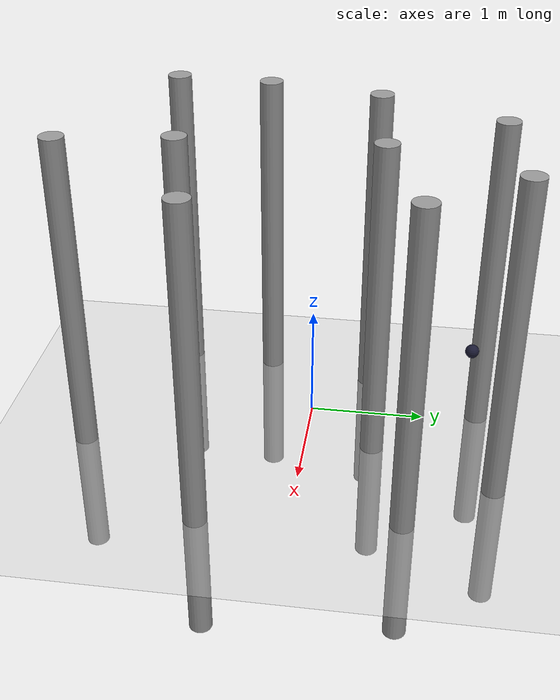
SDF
<?xml version="1.0" ?>
<sdf version="1.4">
  <world name="default">
    <include>
      <uri>model://ground_plane</uri>
    </include>
    <include>
      <uri>model://sun</uri>
    </include>

    <!-- Only one ROS interface plugin is required per world, as any other plugin can connect a Gazebo
         topic to a ROS topic (or vise versa). -->
    <plugin name="ros_interface_plugin" filename="librotors_gazebo_ros_interface_plugin.so"/>

    <spherical_coordinates>
      <surface_model>EARTH_WGS84</surface_model>
      <latitude_deg>47.3667</latitude_deg>
      <longitude_deg>8.5500</longitude_deg>
      <elevation>500.0</elevation>
      <heading_deg>0</heading_deg>
    </spherical_coordinates>
    <physics type='ode'>
      <ode>
        <solver>
          <type>quick</type>
          <iters>1000</iters>
          <sor>1.3</sor>
        </solver>
        <constraints>
          <cfm>0</cfm>
          <erp>0.2</erp>
          <contact_max_correcting_vel>100</contact_max_correcting_vel>
          <contact_surface_layer>0.001</contact_surface_layer>
        </constraints>
      </ode>
      <max_step_size>0.01</max_step_size>
      <real_time_factor>1</real_time_factor>
      <real_time_update_rate>100</real_time_update_rate>
      <gravity>0 0 -9.8</gravity>
    </physics>
    <model name="target">
      <pose>1.2 1.32 1.5 0 0 0</pose>
      <static>0</static>
      <link name="link">
        <gravity>0</gravity>
        <collision name="collision">
          <geometry>
          <sphere>
            <radius>0.051</radius>
          </sphere>
        </geometry>
          <surface>
            <contact>
              <collide_without_contact>1</collide_without_contact>
            </contact>
          </surface>
        </collision>
        <visual name="visual">
          <material>
            <ambient>0.1 0.1 0.1 1</ambient>
            <diffuse>0.1 0.1 0.2 1</diffuse>
            <specular>0 1 1 0</specular>
            <emissive>0 1 0 1</emissive>
          </material>
          <geometry>
          <sphere>
            <radius>0.051</radius>
          </sphere>
        </geometry>
        </visual>
      </link>
    </model>
    <model name='unit_cylinder_clone'>
      <static>1</static>
      <pose frame=''>0.717658 -1.91902 0.808215 3e-06 4e-06 -0</pose>
      <link name='link'>
        <inertial>
          <mass>1</mass>
          <inertia>
            <ixx>0.145833</ixx>
            <ixy>0</ixy>
            <ixz>0</ixz>
            <iyy>0.145833</iyy>
            <iyz>0</iyz>
            <izz>0.125</izz>
          </inertia>
        </inertial>
        <collision name='collision'>
          <geometry>
            <cylinder>
              <radius>0.1</radius>
              <length>4</length>
            </cylinder>
          </geometry>
          <max_contacts>10</max_contacts>
          <surface>
            <contact>
              <ode/>
            </contact>
            <bounce/>
            <friction>
              <torsional>
                <ode/>
              </torsional>
              <ode/>
            </friction>
          </surface>
        </collision>
        <visual name='visual'>
          <geometry>
            <cylinder>
              <radius>0.1</radius>
              <length>4</length>
            </cylinder>
          </geometry>
          <material>
            <script>
              <name>Gazebo/Grey</name>
              <uri>file://media/materials/scripts/gazebo.material</uri>
            </script>
          </material>
        </visual>
        <self_collide>0</self_collide>
        <kinematic>0</kinematic>
      </link>
    </model>
    <model name='unit_cylinder_clone_0'>
      <static>1</static>
      <pose frame=''>1.48497 0.902532 0.808215 3e-06 4e-06 -0</pose>
      <link name='link'>
        <inertial>
          <mass>1</mass>
          <inertia>
            <ixx>0.145833</ixx>
            <ixy>0</ixy>
            <ixz>0</ixz>
            <iyy>0.145833</iyy>
            <iyz>0</iyz>
            <izz>0.125</izz>
          </inertia>
        </inertial>
        <collision name='collision'>
          <geometry>
            <cylinder>
              <radius>0.1</radius>
              <length>4</length>
            </cylinder>
          </geometry>
          <max_contacts>10</max_contacts>
          <surface>
            <contact>
              <ode/>
            </contact>
            <bounce/>
            <friction>
              <torsional>
                <ode/>
              </torsional>
              <ode/>
            </friction>
          </surface>
        </collision>
        <visual name='visual'>
          <geometry>
            <cylinder>
              <radius>0.1</radius>
              <length>4</length>
            </cylinder>
          </geometry>
          <material>
            <script>
              <name>Gazebo/Grey</name>
              <uri>file://media/materials/scripts/gazebo.material</uri>
            </script>
          </material>
        </visual>
        <self_collide>0</self_collide>
        <kinematic>0</kinematic>
      </link>
    </model>
    <model name='unit_cylinder_clone_1'>
      <static>1</static>
      <pose frame=''>1.65005 -0.742759 0.808215 3e-06 4e-06 -0</pose>
      <link name='link'>
        <inertial>
          <mass>1</mass>
          <inertia>
            <ixx>0.145833</ixx>
            <ixy>0</ixy>
            <ixz>0</ixz>
            <iyy>0.145833</iyy>
            <iyz>0</iyz>
            <izz>0.125</izz>
          </inertia>
        </inertial>
        <collision name='collision'>
          <geometry>
            <cylinder>
              <radius>0.1</radius>
              <length>4</length>
            </cylinder>
          </geometry>
          <max_contacts>10</max_contacts>
          <surface>
            <contact>
              <ode/>
            </contact>
            <bounce/>
            <friction>
              <torsional>
                <ode/>
              </torsional>
              <ode/>
            </friction>
          </surface>
        </collision>
        <visual name='visual'>
          <geometry>
            <cylinder>
              <radius>0.1</radius>
              <length>4</length>
            </cylinder>
          </geometry>
          <material>
            <script>
              <name>Gazebo/Grey</name>
              <uri>file://media/materials/scripts/gazebo.material</uri>
            </script>
          </material>
        </visual>
        <self_collide>0</self_collide>
        <kinematic>0</kinematic>
      </link>
    </model>
    <model name='unit_cylinder_clone_2'>
      <static>1</static>
      <pose frame=''>0.495984 0.583194 0.808215 3e-06 4e-06 -0</pose>
      <link name='link'>
        <inertial>
          <mass>1</mass>
          <inertia>
            <ixx>0.145833</ixx>
            <ixy>0</ixy>
            <ixz>0</ixz>
            <iyy>0.145833</iyy>
            <iyz>0</iyz>
            <izz>0.125</izz>
          </inertia>
        </inertial>
        <collision name='collision'>
          <geometry>
            <cylinder>
              <radius>0.1</radius>
              <length>4</length>
            </cylinder>
          </geometry>
          <max_contacts>10</max_contacts>
          <surface>
            <contact>
              <ode/>
            </contact>
            <bounce/>
            <friction>
              <torsional>
                <ode/>
              </torsional>
              <ode/>
            </friction>
          </surface>
        </collision>
        <visual name='visual'>
          <geometry>
            <cylinder>
              <radius>0.1</radius>
              <length>4</length>
            </cylinder>
          </geometry>
          <material>
            <script>
              <name>Gazebo/Grey</name>
              <uri>file://media/materials/scripts/gazebo.material</uri>
            </script>
          </material>
        </visual>
        <self_collide>0</self_collide>
        <kinematic>0</kinematic>
      </link>
    </model>
    <model name='unit_cylinder_clone_3'>
      <static>1</static>
      <pose frame=''>-0.553922 0.474372 0.808215 3e-06 4e-06 -0</pose>
      <link name='link'>
        <inertial>
          <mass>1</mass>
          <inertia>
            <ixx>0.145833</ixx>
            <ixy>0</ixy>
            <ixz>0</ixz>
            <iyy>0.145833</iyy>
            <iyz>0</iyz>
            <izz>0.125</izz>
          </inertia>
        </inertial>
        <collision name='collision'>
          <geometry>
            <cylinder>
              <radius>0.1</radius>
              <length>4</length>
            </cylinder>
          </geometry>
          <max_contacts>10</max_contacts>
          <surface>
            <contact>
              <ode/>
            </contact>
            <bounce/>
            <friction>
              <torsional>
                <ode/>
              </torsional>
              <ode/>
            </friction>
          </surface>
        </collision>
        <visual name='visual'>
          <geometry>
            <cylinder>
              <radius>0.1</radius>
              <length>4</length>
            </cylinder>
          </geometry>
          <material>
            <script>
              <name>Gazebo/Grey</name>
              <uri>file://media/materials/scripts/gazebo.material</uri>
            </script>
          </material>
        </visual>
        <self_collide>0</self_collide>
        <kinematic>0</kinematic>
      </link>
    </model>
    <model name='unit_cylinder_clone_4'>
      <static>1</static>
      <pose frame=''>-0.086942 1.48482 0.808215 3e-06 4e-06 -0</pose>
      <link name='link'>
        <inertial>
          <mass>1</mass>
          <inertia>
            <ixx>0.145833</ixx>
            <ixy>0</ixy>
            <ixz>0</ixz>
            <iyy>0.145833</iyy>
            <iyz>0</iyz>
            <izz>0.125</izz>
          </inertia>
        </inertial>
        <collision name='collision'>
          <geometry>
            <cylinder>
              <radius>0.1</radius>
              <length>4</length>
            </cylinder>
          </geometry>
          <max_contacts>10</max_contacts>
          <surface>
            <contact>
              <ode/>
            </contact>
            <bounce/>
            <friction>
              <torsional>
                <ode/>
              </torsional>
              <ode/>
            </friction>
          </surface>
        </collision>
        <visual name='visual'>
          <geometry>
            <cylinder>
              <radius>0.1</radius>
              <length>4</length>
            </cylinder>
          </geometry>
          <material>
            <script>
              <name>Gazebo/Grey</name>
              <uri>file://media/materials/scripts/gazebo.material</uri>
            </script>
          </material>
        </visual>
        <self_collide>0</self_collide>
        <kinematic>0</kinematic>
      </link>
    </model>
    <model name='unit_cylinder_clone_5'>
      <static>1</static>
      <pose frame=''>0.577494 -1.00937 0.808215 3e-06 4e-06 -0</pose>
      <link name='link'>
        <inertial>
          <mass>1</mass>
          <inertia>
            <ixx>0.145833</ixx>
            <ixy>0</ixy>
            <ixz>0</ixz>
            <iyy>0.145833</iyy>
            <iyz>0</iyz>
            <izz>0.125</izz>
          </inertia>
        </inertial>
        <collision name='collision'>
          <geometry>
            <cylinder>
              <radius>0.1</radius>
              <length>4</length>
            </cylinder>
          </geometry>
          <max_contacts>10</max_contacts>
          <surface>
            <contact>
              <ode/>
            </contact>
            <bounce/>
            <friction>
              <torsional>
                <ode/>
              </torsional>
              <ode/>
            </friction>
          </surface>
        </collision>
        <visual name='visual'>
          <geometry>
            <cylinder>
              <radius>0.1</radius>
              <length>4</length>
            </cylinder>
          </geometry>
          <material>
            <script>
              <name>Gazebo/Grey</name>
              <uri>file://media/materials/scripts/gazebo.material</uri>
            </script>
          </material>
        </visual>
        <self_collide>0</self_collide>
        <kinematic>0</kinematic>
      </link>
    </model>
    <model name='unit_cylinder_clone_5_clone'>
      <static>1</static>
      <pose frame=''>-0.788293 -1.27241 0.808215 3e-06 4e-06 -0</pose>
      <link name='link'>
        <inertial>
          <mass>1</mass>
          <inertia>
            <ixx>0.145833</ixx>
            <ixy>0</ixy>
            <ixz>0</ixz>
            <iyy>0.145833</iyy>
            <iyz>0</iyz>
            <izz>0.125</izz>
          </inertia>
        </inertial>
        <collision name='collision'>
          <geometry>
            <cylinder>
              <radius>0.1</radius>
              <length>4</length>
            </cylinder>
          </geometry>
          <max_contacts>10</max_contacts>
          <surface>
            <contact>
              <ode/>
            </contact>
            <bounce/>
            <friction>
              <torsional>
                <ode/>
              </torsional>
              <ode/>
            </friction>
          </surface>
        </collision>
        <visual name='visual'>
          <geometry>
            <cylinder>
              <radius>0.1</radius>
              <length>4</length>
            </cylinder>
          </geometry>
          <material>
            <script>
              <name>Gazebo/Grey</name>
              <uri>file://media/materials/scripts/gazebo.material</uri>
            </script>
          </material>
        </visual>
        <self_collide>0</self_collide>
        <kinematic>0</kinematic>
      </link>
    </model>
    <model name='unit_cylinder_clone_5_clone_0'>
      <static>1</static>
      <pose frame=''>-0.739934 -0.473058 0.808215 3e-06 4e-06 -0</pose>
      <link name='link'>
        <inertial>
          <mass>1</mass>
          <inertia>
            <ixx>0.145833</ixx>
            <ixy>0</ixy>
            <ixz>0</ixz>
            <iyy>0.145833</iyy>
            <iyz>0</iyz>
            <izz>0.125</izz>
          </inertia>
        </inertial>
        <collision name='collision'>
          <geometry>
            <cylinder>
              <radius>0.1</radius>
              <length>4</length>
            </cylinder>
          </geometry>
          <max_contacts>10</max_contacts>
          <surface>
            <contact>
              <ode/>
            </contact>
            <bounce/>
            <friction>
              <torsional>
                <ode/>
              </torsional>
              <ode/>
            </friction>
          </surface>
        </collision>
        <visual name='visual'>
          <geometry>
            <cylinder>
              <radius>0.1</radius>
              <length>4</length>
            </cylinder>
          </geometry>
          <material>
            <script>
              <name>Gazebo/Grey</name>
              <uri>file://media/materials/scripts/gazebo.material</uri>
            </script>
          </material>
        </visual>
        <self_collide>0</self_collide>
        <kinematic>0</kinematic>
      </link>
    </model>
    <model name='unit_cylinder_clone_5_clone_1'>
      <static>1</static>
      <pose frame=''>0.946768 1.62792 0.808215 3e-06 4e-06 -0</pose>
      <link name='link'>
        <inertial>
          <mass>1</mass>
          <inertia>
            <ixx>0.145833</ixx>
            <ixy>0</ixy>
            <ixz>0</ixz>
            <iyy>0.145833</iyy>
            <iyz>0</iyz>
            <izz>0.125</izz>
          </inertia>
        </inertial>
        <collision name='collision'>
          <geometry>
            <cylinder>
              <radius>0.1</radius>
              <length>4</length>
            </cylinder>
          </geometry>
          <max_contacts>10</max_contacts>
          <surface>
            <contact>
              <ode/>
            </contact>
            <bounce/>
            <friction>
              <torsional>
                <ode/>
              </torsional>
              <ode/>
            </friction>
          </surface>
        </collision>
        <visual name='visual'>
          <geometry>
            <cylinder>
              <radius>0.1</radius>
              <length>4</length>
            </cylinder>
          </geometry>
          <material>
            <script>
              <name>Gazebo/Grey</name>
              <uri>file://media/materials/scripts/gazebo.material</uri>
            </script>
          </material>
        </visual>
        <self_collide>0</self_collide>
        <kinematic>0</kinematic>
      </link>
    </model>
  </world>
</sdf>
